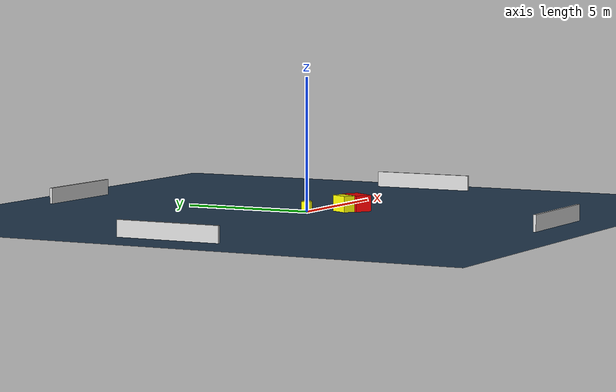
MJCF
<?xml version="1.0" ?>
<mujoco model="generated_environment">
  <option timestep="0.01" integrator="RK4" cone="elliptic"/>
  <default>
    <geom density="1"/>
  </default>
  <asset>
    <texture builtin="gradient" height="3072" name="skybox" rgb1="0.3 0.5 0.7" rgb2="0 0 0" type="skybox" width="512"/>
    <texture builtin="checker" height="300" name="groundplane" rgb1="0.2 0.3 0.4" rgb2="0.1 0.2 0.3" type="2d" width="300"/>
    <material name="groundplane" reflectance="0.2" texrepeat="5 5" texture="groundplane"/>
  </asset>
  <worldbody>
    <light dir="0 0 -1" directional="true" pos="0 0 1.5"/>
    <geom condim="3" friction="0.5 0.005 0.001" material="groundplane" name="floor" pos="0 0 0" size="0 0 0.05" type="plane"/>
    <body name="walls">
      <geom name="wall_1" condim="4" pos="-10.0 0.0 0.3" rgba="0.800000011920929 0.800000011920929 0.800000011920929 1.0" size="0.05 2.0 0.3" type="box"/>
      <geom name="wall_2" condim="4" pos="10.0 0.0 0.3" rgba="0.800000011920929 0.800000011920929 0.800000011920929 1.0" size="0.05 2.0 0.3" type="box"/>
      <geom name="wall_3" condim="4" pos="0.0 -10.0 0.3" rgba="0.800000011920929 0.800000011920929 0.800000011920929 1.0" size="2.0 0.05 0.3" type="box"/>
      <geom name="wall_4" condim="4" pos="0.0 10.0 0.3" rgba="0.800000011920929 0.800000011920929 0.800000011920929 1.0" size="2.0 0.05 0.3" type="box"/>
    </body>
    <body name="robot">
      <joint name="joint_x" type="slide" pos="0 0 0" axis="1 0 0"/>
      <joint name="joint_y" type="slide" pos="0 0 0" axis="0 1 0"/>
      <geom name="robot" type="cylinder" pos="0.0 0.0 0.2" size="0.2 0.2 0.0" mass="5.0" friction="1.0 0.005 0.0001" condim="4" rgba="1.0 1.0 0.0 1.0"/>
    </body>
    <body name="obstacle_1_movable">
      <geom name="obstacle_1_movable" condim="4" pos="0.8194920426454734 -1.120335488846757 0.3" euler="0 0 61.567057276961634" friction="0.0 0.005 0.001" rgba="1.0 1.0 0.0 1.0" size="0.3732628408484848 0.22959946949744153 0.3" type="box" mass="0.1"/>
      <joint type="free"/>
    </body>
    <body name="obstacle_2_static">
      <geom name="obstacle_2_static" condim="4" pos="1.3420786891398453 -1.3958876235878606 0.3" euler="0 0 146.89139418669097" friction="0.0 0.005 0.001" rgba="1.0 0.0 0.0 1.0" size="0.321221556565802 0.5224823831750709 0.3" type="box"/>
    </body>
  </worldbody>
  <actuator>
    <motor name="actuator_x" joint="joint_x" gear="1" ctrlrange="-1 1"/>
    <motor name="actuator_y" joint="joint_y" gear="1" ctrlrange="-1 1"/>
  </actuator>
</mujoco>
